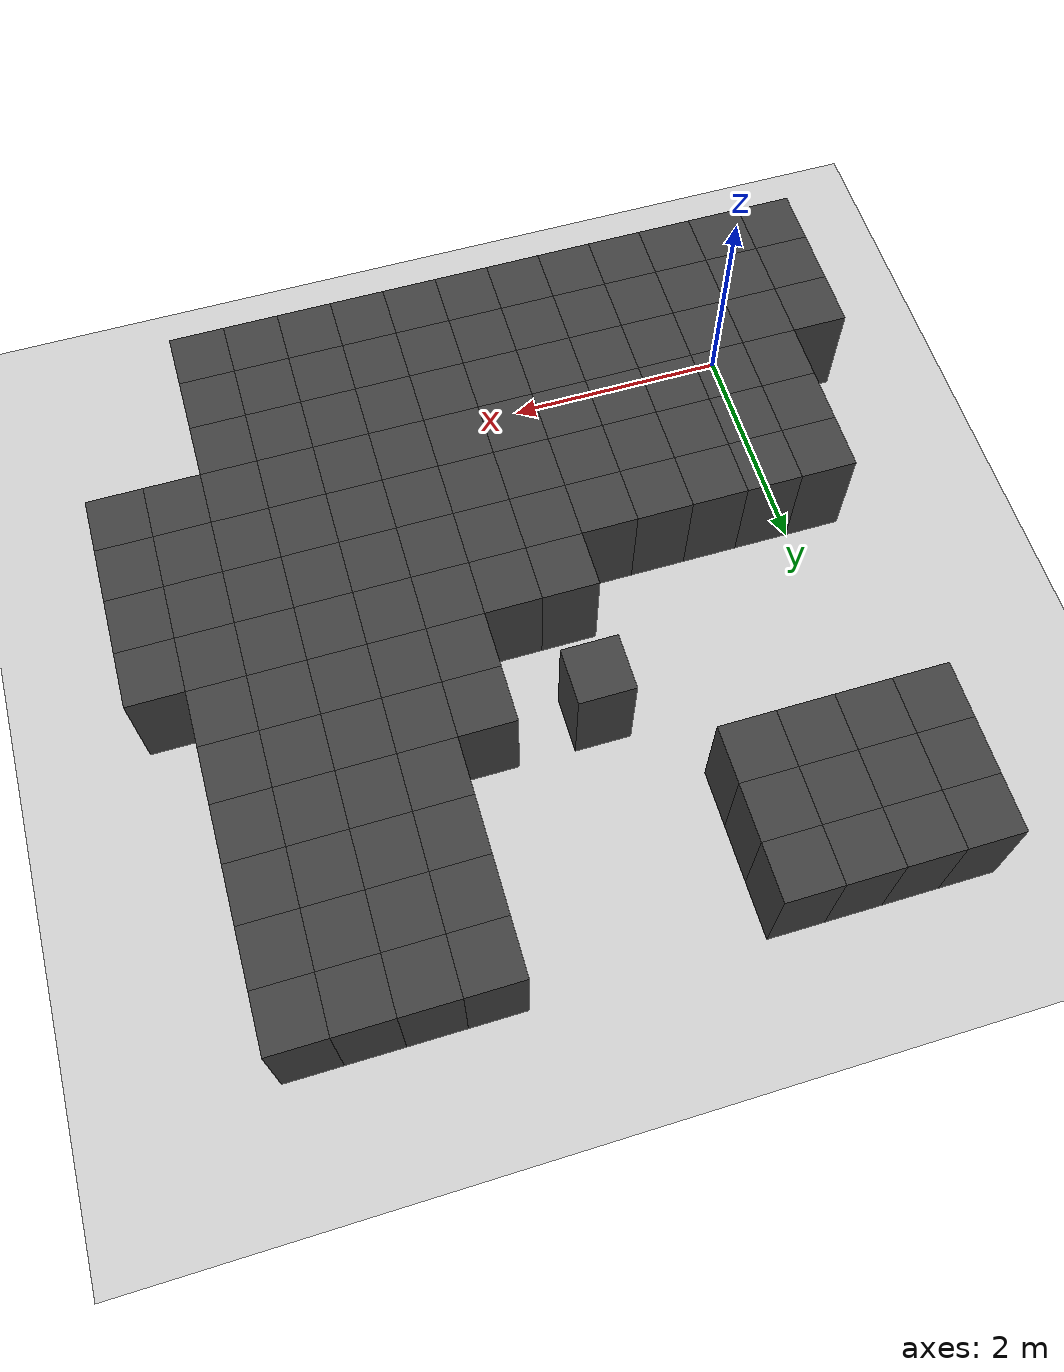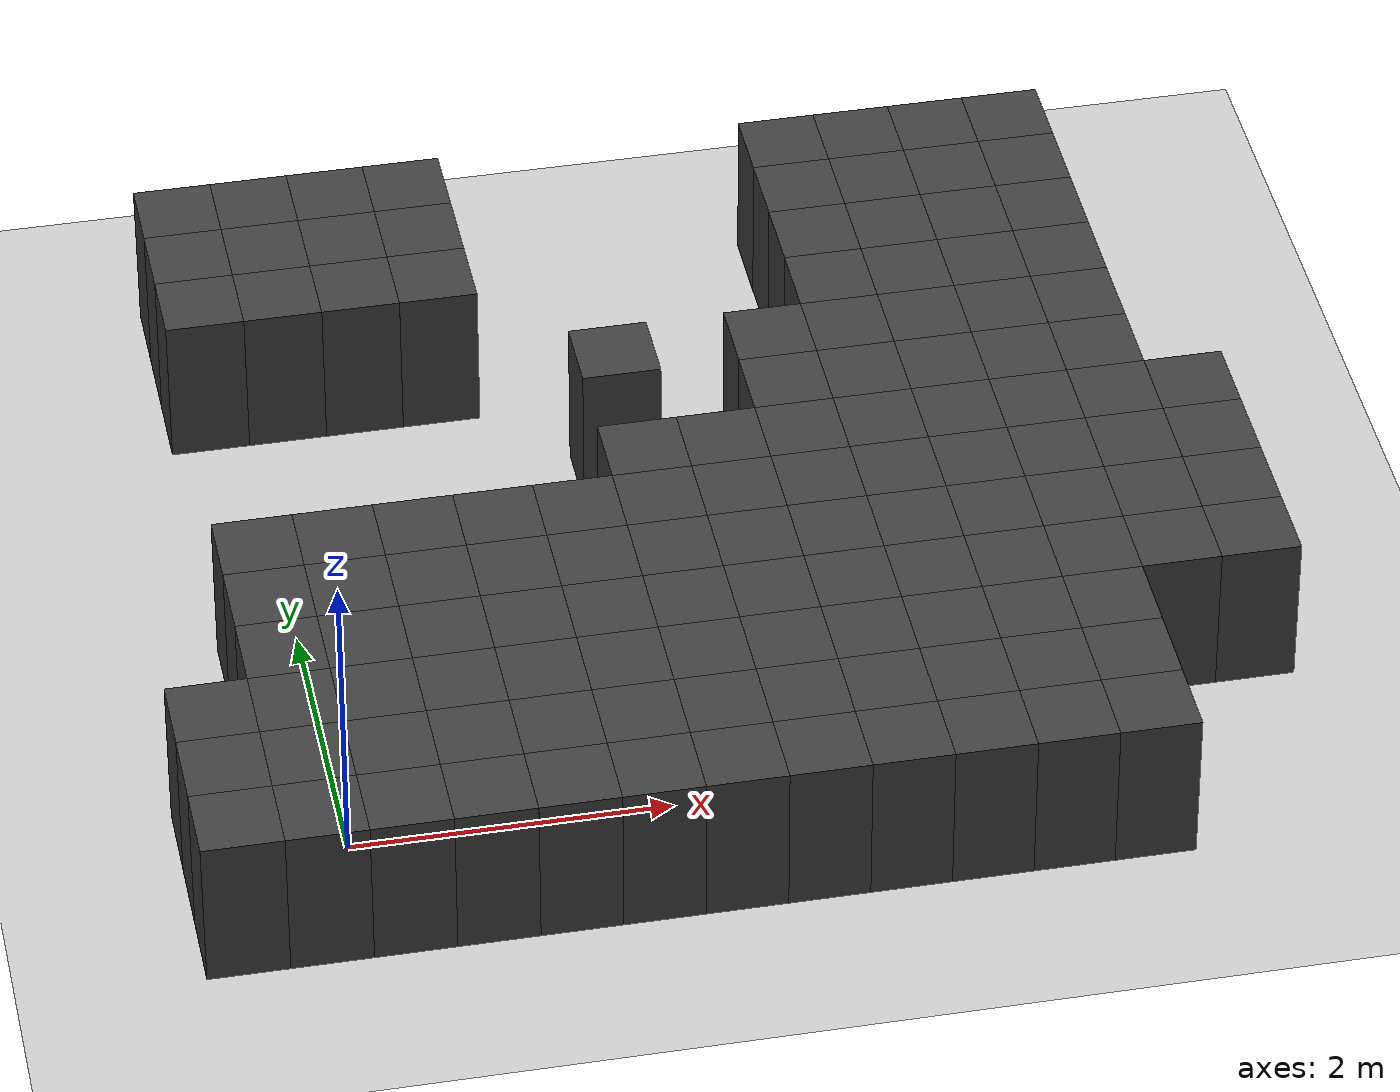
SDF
<sdf version="1.7">
 <world name="map_14706">
  <model name="ground_plane">
   <static>true</static>
   <link name="link">
    <collision name="collision">
     <geometry><plane><normal>0 0 1</normal><size>200 200</size></plane></geometry>
    </collision>
    <visual name="visual">
     <geometry><plane><normal>0 0 1</normal><size>200 200</size></plane></geometry>
     <material><ambient>0.8 0.8 0.8 1</ambient><diffuse>0.8 0.8 0.8 1</diffuse></material>
    </visual>
   </link>
  </model>
  <model name="maze_environment">
   <static>true</static>
   <link name="wall_438">
    <pose>-0.250 5.250 0.500 0 0 0</pose>
    <collision name="col"><geometry><box><size>0.5 0.5 1.0</size></box></geometry></collision>
    <visual name="vis">
     <geometry><box><size>0.5 0.5 1.0</size></box></geometry>
     <material><ambient>0.15 0.15 0.15 1</ambient><diffuse>0.25 0.25 0.25 1</diffuse></material>
    </visual>
   </link>
   <link name="wall_439">
    <pose>0.250 5.250 0.500 0 0 0</pose>
    <collision name="col"><geometry><box><size>0.5 0.5 1.0</size></box></geometry></collision>
    <visual name="vis">
     <geometry><box><size>0.5 0.5 1.0</size></box></geometry>
     <material><ambient>0.15 0.15 0.15 1</ambient><diffuse>0.25 0.25 0.25 1</diffuse></material>
    </visual>
   </link>
   <link name="wall_440">
    <pose>0.750 5.250 0.500 0 0 0</pose>
    <collision name="col"><geometry><box><size>0.5 0.5 1.0</size></box></geometry></collision>
    <visual name="vis">
     <geometry><box><size>0.5 0.5 1.0</size></box></geometry>
     <material><ambient>0.15 0.15 0.15 1</ambient><diffuse>0.25 0.25 0.25 1</diffuse></material>
    </visual>
   </link>
   <link name="wall_441">
    <pose>1.250 5.250 0.500 0 0 0</pose>
    <collision name="col"><geometry><box><size>0.5 0.5 1.0</size></box></geometry></collision>
    <visual name="vis">
     <geometry><box><size>0.5 0.5 1.0</size></box></geometry>
     <material><ambient>0.15 0.15 0.15 1</ambient><diffuse>0.25 0.25 0.25 1</diffuse></material>
    </visual>
   </link>
   <link name="wall_442">
    <pose>3.750 5.250 0.500 0 0 0</pose>
    <collision name="col"><geometry><box><size>0.5 0.5 1.0</size></box></geometry></collision>
    <visual name="vis">
     <geometry><box><size>0.5 0.5 1.0</size></box></geometry>
     <material><ambient>0.15 0.15 0.15 1</ambient><diffuse>0.25 0.25 0.25 1</diffuse></material>
    </visual>
   </link>
   <link name="wall_443">
    <pose>4.250 5.250 0.500 0 0 0</pose>
    <collision name="col"><geometry><box><size>0.5 0.5 1.0</size></box></geometry></collision>
    <visual name="vis">
     <geometry><box><size>0.5 0.5 1.0</size></box></geometry>
     <material><ambient>0.15 0.15 0.15 1</ambient><diffuse>0.25 0.25 0.25 1</diffuse></material>
    </visual>
   </link>
   <link name="wall_444">
    <pose>4.750 5.250 0.500 0 0 0</pose>
    <collision name="col"><geometry><box><size>0.5 0.5 1.0</size></box></geometry></collision>
    <visual name="vis">
     <geometry><box><size>0.5 0.5 1.0</size></box></geometry>
     <material><ambient>0.15 0.15 0.15 1</ambient><diffuse>0.25 0.25 0.25 1</diffuse></material>
    </visual>
   </link>
   <link name="wall_445">
    <pose>5.250 5.250 0.500 0 0 0</pose>
    <collision name="col"><geometry><box><size>0.5 0.5 1.0</size></box></geometry></collision>
    <visual name="vis">
     <geometry><box><size>0.5 0.5 1.0</size></box></geometry>
     <material><ambient>0.15 0.15 0.15 1</ambient><diffuse>0.25 0.25 0.25 1</diffuse></material>
    </visual>
   </link>
   <link name="wall_478">
    <pose>-0.250 4.750 0.500 0 0 0</pose>
    <collision name="col"><geometry><box><size>0.5 0.5 1.0</size></box></geometry></collision>
    <visual name="vis">
     <geometry><box><size>0.5 0.5 1.0</size></box></geometry>
     <material><ambient>0.15 0.15 0.15 1</ambient><diffuse>0.25 0.25 0.25 1</diffuse></material>
    </visual>
   </link>
   <link name="wall_479">
    <pose>0.250 4.750 0.500 0 0 0</pose>
    <collision name="col"><geometry><box><size>0.5 0.5 1.0</size></box></geometry></collision>
    <visual name="vis">
     <geometry><box><size>0.5 0.5 1.0</size></box></geometry>
     <material><ambient>0.15 0.15 0.15 1</ambient><diffuse>0.25 0.25 0.25 1</diffuse></material>
    </visual>
   </link>
   <link name="wall_480">
    <pose>0.750 4.750 0.500 0 0 0</pose>
    <collision name="col"><geometry><box><size>0.5 0.5 1.0</size></box></geometry></collision>
    <visual name="vis">
     <geometry><box><size>0.5 0.5 1.0</size></box></geometry>
     <material><ambient>0.15 0.15 0.15 1</ambient><diffuse>0.25 0.25 0.25 1</diffuse></material>
    </visual>
   </link>
   <link name="wall_481">
    <pose>1.250 4.750 0.500 0 0 0</pose>
    <collision name="col"><geometry><box><size>0.5 0.5 1.0</size></box></geometry></collision>
    <visual name="vis">
     <geometry><box><size>0.5 0.5 1.0</size></box></geometry>
     <material><ambient>0.15 0.15 0.15 1</ambient><diffuse>0.25 0.25 0.25 1</diffuse></material>
    </visual>
   </link>
   <link name="wall_482">
    <pose>3.750 4.750 0.500 0 0 0</pose>
    <collision name="col"><geometry><box><size>0.5 0.5 1.0</size></box></geometry></collision>
    <visual name="vis">
     <geometry><box><size>0.5 0.5 1.0</size></box></geometry>
     <material><ambient>0.15 0.15 0.15 1</ambient><diffuse>0.25 0.25 0.25 1</diffuse></material>
    </visual>
   </link>
   <link name="wall_483">
    <pose>4.250 4.750 0.500 0 0 0</pose>
    <collision name="col"><geometry><box><size>0.5 0.5 1.0</size></box></geometry></collision>
    <visual name="vis">
     <geometry><box><size>0.5 0.5 1.0</size></box></geometry>
     <material><ambient>0.15 0.15 0.15 1</ambient><diffuse>0.25 0.25 0.25 1</diffuse></material>
    </visual>
   </link>
   <link name="wall_484">
    <pose>4.750 4.750 0.500 0 0 0</pose>
    <collision name="col"><geometry><box><size>0.5 0.5 1.0</size></box></geometry></collision>
    <visual name="vis">
     <geometry><box><size>0.5 0.5 1.0</size></box></geometry>
     <material><ambient>0.15 0.15 0.15 1</ambient><diffuse>0.25 0.25 0.25 1</diffuse></material>
    </visual>
   </link>
   <link name="wall_485">
    <pose>5.250 4.750 0.500 0 0 0</pose>
    <collision name="col"><geometry><box><size>0.5 0.5 1.0</size></box></geometry></collision>
    <visual name="vis">
     <geometry><box><size>0.5 0.5 1.0</size></box></geometry>
     <material><ambient>0.15 0.15 0.15 1</ambient><diffuse>0.25 0.25 0.25 1</diffuse></material>
    </visual>
   </link>
   <link name="wall_517">
    <pose>-0.250 4.250 0.500 0 0 0</pose>
    <collision name="col"><geometry><box><size>0.5 0.5 1.0</size></box></geometry></collision>
    <visual name="vis">
     <geometry><box><size>0.5 0.5 1.0</size></box></geometry>
     <material><ambient>0.15 0.15 0.15 1</ambient><diffuse>0.25 0.25 0.25 1</diffuse></material>
    </visual>
   </link>
   <link name="wall_518">
    <pose>0.250 4.250 0.500 0 0 0</pose>
    <collision name="col"><geometry><box><size>0.5 0.5 1.0</size></box></geometry></collision>
    <visual name="vis">
     <geometry><box><size>0.5 0.5 1.0</size></box></geometry>
     <material><ambient>0.15 0.15 0.15 1</ambient><diffuse>0.25 0.25 0.25 1</diffuse></material>
    </visual>
   </link>
   <link name="wall_519">
    <pose>0.750 4.250 0.500 0 0 0</pose>
    <collision name="col"><geometry><box><size>0.5 0.5 1.0</size></box></geometry></collision>
    <visual name="vis">
     <geometry><box><size>0.5 0.5 1.0</size></box></geometry>
     <material><ambient>0.15 0.15 0.15 1</ambient><diffuse>0.25 0.25 0.25 1</diffuse></material>
    </visual>
   </link>
   <link name="wall_520">
    <pose>1.250 4.250 0.500 0 0 0</pose>
    <collision name="col"><geometry><box><size>0.5 0.5 1.0</size></box></geometry></collision>
    <visual name="vis">
     <geometry><box><size>0.5 0.5 1.0</size></box></geometry>
     <material><ambient>0.15 0.15 0.15 1</ambient><diffuse>0.25 0.25 0.25 1</diffuse></material>
    </visual>
   </link>
   <link name="wall_521">
    <pose>3.750 4.250 0.500 0 0 0</pose>
    <collision name="col"><geometry><box><size>0.5 0.5 1.0</size></box></geometry></collision>
    <visual name="vis">
     <geometry><box><size>0.5 0.5 1.0</size></box></geometry>
     <material><ambient>0.15 0.15 0.15 1</ambient><diffuse>0.25 0.25 0.25 1</diffuse></material>
    </visual>
   </link>
   <link name="wall_522">
    <pose>4.250 4.250 0.500 0 0 0</pose>
    <collision name="col"><geometry><box><size>0.5 0.5 1.0</size></box></geometry></collision>
    <visual name="vis">
     <geometry><box><size>0.5 0.5 1.0</size></box></geometry>
     <material><ambient>0.15 0.15 0.15 1</ambient><diffuse>0.25 0.25 0.25 1</diffuse></material>
    </visual>
   </link>
   <link name="wall_523">
    <pose>4.750 4.250 0.500 0 0 0</pose>
    <collision name="col"><geometry><box><size>0.5 0.5 1.0</size></box></geometry></collision>
    <visual name="vis">
     <geometry><box><size>0.5 0.5 1.0</size></box></geometry>
     <material><ambient>0.15 0.15 0.15 1</ambient><diffuse>0.25 0.25 0.25 1</diffuse></material>
    </visual>
   </link>
   <link name="wall_524">
    <pose>5.250 4.250 0.500 0 0 0</pose>
    <collision name="col"><geometry><box><size>0.5 0.5 1.0</size></box></geometry></collision>
    <visual name="vis">
     <geometry><box><size>0.5 0.5 1.0</size></box></geometry>
     <material><ambient>0.15 0.15 0.15 1</ambient><diffuse>0.25 0.25 0.25 1</diffuse></material>
    </visual>
   </link>
   <link name="wall_556">
    <pose>3.750 3.750 0.500 0 0 0</pose>
    <collision name="col"><geometry><box><size>0.5 0.5 1.0</size></box></geometry></collision>
    <visual name="vis">
     <geometry><box><size>0.5 0.5 1.0</size></box></geometry>
     <material><ambient>0.15 0.15 0.15 1</ambient><diffuse>0.25 0.25 0.25 1</diffuse></material>
    </visual>
   </link>
   <link name="wall_557">
    <pose>4.250 3.750 0.500 0 0 0</pose>
    <collision name="col"><geometry><box><size>0.5 0.5 1.0</size></box></geometry></collision>
    <visual name="vis">
     <geometry><box><size>0.5 0.5 1.0</size></box></geometry>
     <material><ambient>0.15 0.15 0.15 1</ambient><diffuse>0.25 0.25 0.25 1</diffuse></material>
    </visual>
   </link>
   <link name="wall_558">
    <pose>4.750 3.750 0.500 0 0 0</pose>
    <collision name="col"><geometry><box><size>0.5 0.5 1.0</size></box></geometry></collision>
    <visual name="vis">
     <geometry><box><size>0.5 0.5 1.0</size></box></geometry>
     <material><ambient>0.15 0.15 0.15 1</ambient><diffuse>0.25 0.25 0.25 1</diffuse></material>
    </visual>
   </link>
   <link name="wall_559">
    <pose>5.250 3.750 0.500 0 0 0</pose>
    <collision name="col"><geometry><box><size>0.5 0.5 1.0</size></box></geometry></collision>
    <visual name="vis">
     <geometry><box><size>0.5 0.5 1.0</size></box></geometry>
     <material><ambient>0.15 0.15 0.15 1</ambient><diffuse>0.25 0.25 0.25 1</diffuse></material>
    </visual>
   </link>
   <link name="wall_586">
    <pose>2.250 3.250 0.500 0 0 0</pose>
    <collision name="col"><geometry><box><size>0.5 0.5 1.0</size></box></geometry></collision>
    <visual name="vis">
     <geometry><box><size>0.5 0.5 1.0</size></box></geometry>
     <material><ambient>0.15 0.15 0.15 1</ambient><diffuse>0.25 0.25 0.25 1</diffuse></material>
    </visual>
   </link>
   <link name="wall_587">
    <pose>3.250 3.250 0.500 0 0 0</pose>
    <collision name="col"><geometry><box><size>0.5 0.5 1.0</size></box></geometry></collision>
    <visual name="vis">
     <geometry><box><size>0.5 0.5 1.0</size></box></geometry>
     <material><ambient>0.15 0.15 0.15 1</ambient><diffuse>0.25 0.25 0.25 1</diffuse></material>
    </visual>
   </link>
   <link name="wall_588">
    <pose>3.750 3.250 0.500 0 0 0</pose>
    <collision name="col"><geometry><box><size>0.5 0.5 1.0</size></box></geometry></collision>
    <visual name="vis">
     <geometry><box><size>0.5 0.5 1.0</size></box></geometry>
     <material><ambient>0.15 0.15 0.15 1</ambient><diffuse>0.25 0.25 0.25 1</diffuse></material>
    </visual>
   </link>
   <link name="wall_589">
    <pose>4.250 3.250 0.500 0 0 0</pose>
    <collision name="col"><geometry><box><size>0.5 0.5 1.0</size></box></geometry></collision>
    <visual name="vis">
     <geometry><box><size>0.5 0.5 1.0</size></box></geometry>
     <material><ambient>0.15 0.15 0.15 1</ambient><diffuse>0.25 0.25 0.25 1</diffuse></material>
    </visual>
   </link>
   <link name="wall_590">
    <pose>4.750 3.250 0.500 0 0 0</pose>
    <collision name="col"><geometry><box><size>0.5 0.5 1.0</size></box></geometry></collision>
    <visual name="vis">
     <geometry><box><size>0.5 0.5 1.0</size></box></geometry>
     <material><ambient>0.15 0.15 0.15 1</ambient><diffuse>0.25 0.25 0.25 1</diffuse></material>
    </visual>
   </link>
   <link name="wall_591">
    <pose>5.250 3.250 0.500 0 0 0</pose>
    <collision name="col"><geometry><box><size>0.5 0.5 1.0</size></box></geometry></collision>
    <visual name="vis">
     <geometry><box><size>0.5 0.5 1.0</size></box></geometry>
     <material><ambient>0.15 0.15 0.15 1</ambient><diffuse>0.25 0.25 0.25 1</diffuse></material>
    </visual>
   </link>
   <link name="wall_618">
    <pose>3.250 2.750 0.500 0 0 0</pose>
    <collision name="col"><geometry><box><size>0.5 0.5 1.0</size></box></geometry></collision>
    <visual name="vis">
     <geometry><box><size>0.5 0.5 1.0</size></box></geometry>
     <material><ambient>0.15 0.15 0.15 1</ambient><diffuse>0.25 0.25 0.25 1</diffuse></material>
    </visual>
   </link>
   <link name="wall_619">
    <pose>3.750 2.750 0.500 0 0 0</pose>
    <collision name="col"><geometry><box><size>0.5 0.5 1.0</size></box></geometry></collision>
    <visual name="vis">
     <geometry><box><size>0.5 0.5 1.0</size></box></geometry>
     <material><ambient>0.15 0.15 0.15 1</ambient><diffuse>0.25 0.25 0.25 1</diffuse></material>
    </visual>
   </link>
   <link name="wall_620">
    <pose>4.250 2.750 0.500 0 0 0</pose>
    <collision name="col"><geometry><box><size>0.5 0.5 1.0</size></box></geometry></collision>
    <visual name="vis">
     <geometry><box><size>0.5 0.5 1.0</size></box></geometry>
     <material><ambient>0.15 0.15 0.15 1</ambient><diffuse>0.25 0.25 0.25 1</diffuse></material>
    </visual>
   </link>
   <link name="wall_621">
    <pose>4.750 2.750 0.500 0 0 0</pose>
    <collision name="col"><geometry><box><size>0.5 0.5 1.0</size></box></geometry></collision>
    <visual name="vis">
     <geometry><box><size>0.5 0.5 1.0</size></box></geometry>
     <material><ambient>0.15 0.15 0.15 1</ambient><diffuse>0.25 0.25 0.25 1</diffuse></material>
    </visual>
   </link>
   <link name="wall_622">
    <pose>5.250 2.750 0.500 0 0 0</pose>
    <collision name="col"><geometry><box><size>0.5 0.5 1.0</size></box></geometry></collision>
    <visual name="vis">
     <geometry><box><size>0.5 0.5 1.0</size></box></geometry>
     <material><ambient>0.15 0.15 0.15 1</ambient><diffuse>0.25 0.25 0.25 1</diffuse></material>
    </visual>
   </link>
   <link name="wall_647">
    <pose>2.250 2.250 0.500 0 0 0</pose>
    <collision name="col"><geometry><box><size>0.5 0.5 1.0</size></box></geometry></collision>
    <visual name="vis">
     <geometry><box><size>0.5 0.5 1.0</size></box></geometry>
     <material><ambient>0.15 0.15 0.15 1</ambient><diffuse>0.25 0.25 0.25 1</diffuse></material>
    </visual>
   </link>
   <link name="wall_648">
    <pose>2.750 2.250 0.500 0 0 0</pose>
    <collision name="col"><geometry><box><size>0.5 0.5 1.0</size></box></geometry></collision>
    <visual name="vis">
     <geometry><box><size>0.5 0.5 1.0</size></box></geometry>
     <material><ambient>0.15 0.15 0.15 1</ambient><diffuse>0.25 0.25 0.25 1</diffuse></material>
    </visual>
   </link>
   <link name="wall_649">
    <pose>3.250 2.250 0.500 0 0 0</pose>
    <collision name="col"><geometry><box><size>0.5 0.5 1.0</size></box></geometry></collision>
    <visual name="vis">
     <geometry><box><size>0.5 0.5 1.0</size></box></geometry>
     <material><ambient>0.15 0.15 0.15 1</ambient><diffuse>0.25 0.25 0.25 1</diffuse></material>
    </visual>
   </link>
   <link name="wall_650">
    <pose>3.750 2.250 0.500 0 0 0</pose>
    <collision name="col"><geometry><box><size>0.5 0.5 1.0</size></box></geometry></collision>
    <visual name="vis">
     <geometry><box><size>0.5 0.5 1.0</size></box></geometry>
     <material><ambient>0.15 0.15 0.15 1</ambient><diffuse>0.25 0.25 0.25 1</diffuse></material>
    </visual>
   </link>
   <link name="wall_651">
    <pose>4.250 2.250 0.500 0 0 0</pose>
    <collision name="col"><geometry><box><size>0.5 0.5 1.0</size></box></geometry></collision>
    <visual name="vis">
     <geometry><box><size>0.5 0.5 1.0</size></box></geometry>
     <material><ambient>0.15 0.15 0.15 1</ambient><diffuse>0.25 0.25 0.25 1</diffuse></material>
    </visual>
   </link>
   <link name="wall_652">
    <pose>4.750 2.250 0.500 0 0 0</pose>
    <collision name="col"><geometry><box><size>0.5 0.5 1.0</size></box></geometry></collision>
    <visual name="vis">
     <geometry><box><size>0.5 0.5 1.0</size></box></geometry>
     <material><ambient>0.15 0.15 0.15 1</ambient><diffuse>0.25 0.25 0.25 1</diffuse></material>
    </visual>
   </link>
   <link name="wall_653">
    <pose>5.250 2.250 0.500 0 0 0</pose>
    <collision name="col"><geometry><box><size>0.5 0.5 1.0</size></box></geometry></collision>
    <visual name="vis">
     <geometry><box><size>0.5 0.5 1.0</size></box></geometry>
     <material><ambient>0.15 0.15 0.15 1</ambient><diffuse>0.25 0.25 0.25 1</diffuse></material>
    </visual>
   </link>
   <link name="wall_654">
    <pose>5.750 2.250 0.500 0 0 0</pose>
    <collision name="col"><geometry><box><size>0.5 0.5 1.0</size></box></geometry></collision>
    <visual name="vis">
     <geometry><box><size>0.5 0.5 1.0</size></box></geometry>
     <material><ambient>0.15 0.15 0.15 1</ambient><diffuse>0.25 0.25 0.25 1</diffuse></material>
    </visual>
   </link>
   <link name="wall_678">
    <pose>-0.250 1.750 0.500 0 0 0</pose>
    <collision name="col"><geometry><box><size>0.5 0.5 1.0</size></box></geometry></collision>
    <visual name="vis">
     <geometry><box><size>0.5 0.5 1.0</size></box></geometry>
     <material><ambient>0.15 0.15 0.15 1</ambient><diffuse>0.25 0.25 0.25 1</diffuse></material>
    </visual>
   </link>
   <link name="wall_679">
    <pose>0.250 1.750 0.500 0 0 0</pose>
    <collision name="col"><geometry><box><size>0.5 0.5 1.0</size></box></geometry></collision>
    <visual name="vis">
     <geometry><box><size>0.5 0.5 1.0</size></box></geometry>
     <material><ambient>0.15 0.15 0.15 1</ambient><diffuse>0.25 0.25 0.25 1</diffuse></material>
    </visual>
   </link>
   <link name="wall_680">
    <pose>0.750 1.750 0.500 0 0 0</pose>
    <collision name="col"><geometry><box><size>0.5 0.5 1.0</size></box></geometry></collision>
    <visual name="vis">
     <geometry><box><size>0.5 0.5 1.0</size></box></geometry>
     <material><ambient>0.15 0.15 0.15 1</ambient><diffuse>0.25 0.25 0.25 1</diffuse></material>
    </visual>
   </link>
   <link name="wall_681">
    <pose>1.250 1.750 0.500 0 0 0</pose>
    <collision name="col"><geometry><box><size>0.5 0.5 1.0</size></box></geometry></collision>
    <visual name="vis">
     <geometry><box><size>0.5 0.5 1.0</size></box></geometry>
     <material><ambient>0.15 0.15 0.15 1</ambient><diffuse>0.25 0.25 0.25 1</diffuse></material>
    </visual>
   </link>
   <link name="wall_682">
    <pose>1.750 1.750 0.500 0 0 0</pose>
    <collision name="col"><geometry><box><size>0.5 0.5 1.0</size></box></geometry></collision>
    <visual name="vis">
     <geometry><box><size>0.5 0.5 1.0</size></box></geometry>
     <material><ambient>0.15 0.15 0.15 1</ambient><diffuse>0.25 0.25 0.25 1</diffuse></material>
    </visual>
   </link>
   <link name="wall_683">
    <pose>2.250 1.750 0.500 0 0 0</pose>
    <collision name="col"><geometry><box><size>0.5 0.5 1.0</size></box></geometry></collision>
    <visual name="vis">
     <geometry><box><size>0.5 0.5 1.0</size></box></geometry>
     <material><ambient>0.15 0.15 0.15 1</ambient><diffuse>0.25 0.25 0.25 1</diffuse></material>
    </visual>
   </link>
   <link name="wall_684">
    <pose>2.750 1.750 0.500 0 0 0</pose>
    <collision name="col"><geometry><box><size>0.5 0.5 1.0</size></box></geometry></collision>
    <visual name="vis">
     <geometry><box><size>0.5 0.5 1.0</size></box></geometry>
     <material><ambient>0.15 0.15 0.15 1</ambient><diffuse>0.25 0.25 0.25 1</diffuse></material>
    </visual>
   </link>
   <link name="wall_685">
    <pose>3.250 1.750 0.500 0 0 0</pose>
    <collision name="col"><geometry><box><size>0.5 0.5 1.0</size></box></geometry></collision>
    <visual name="vis">
     <geometry><box><size>0.5 0.5 1.0</size></box></geometry>
     <material><ambient>0.15 0.15 0.15 1</ambient><diffuse>0.25 0.25 0.25 1</diffuse></material>
    </visual>
   </link>
   <link name="wall_686">
    <pose>3.750 1.750 0.500 0 0 0</pose>
    <collision name="col"><geometry><box><size>0.5 0.5 1.0</size></box></geometry></collision>
    <visual name="vis">
     <geometry><box><size>0.5 0.5 1.0</size></box></geometry>
     <material><ambient>0.15 0.15 0.15 1</ambient><diffuse>0.25 0.25 0.25 1</diffuse></material>
    </visual>
   </link>
   <link name="wall_687">
    <pose>4.250 1.750 0.500 0 0 0</pose>
    <collision name="col"><geometry><box><size>0.5 0.5 1.0</size></box></geometry></collision>
    <visual name="vis">
     <geometry><box><size>0.5 0.5 1.0</size></box></geometry>
     <material><ambient>0.15 0.15 0.15 1</ambient><diffuse>0.25 0.25 0.25 1</diffuse></material>
    </visual>
   </link>
   <link name="wall_688">
    <pose>4.750 1.750 0.500 0 0 0</pose>
    <collision name="col"><geometry><box><size>0.5 0.5 1.0</size></box></geometry></collision>
    <visual name="vis">
     <geometry><box><size>0.5 0.5 1.0</size></box></geometry>
     <material><ambient>0.15 0.15 0.15 1</ambient><diffuse>0.25 0.25 0.25 1</diffuse></material>
    </visual>
   </link>
   <link name="wall_689">
    <pose>5.250 1.750 0.500 0 0 0</pose>
    <collision name="col"><geometry><box><size>0.5 0.5 1.0</size></box></geometry></collision>
    <visual name="vis">
     <geometry><box><size>0.5 0.5 1.0</size></box></geometry>
     <material><ambient>0.15 0.15 0.15 1</ambient><diffuse>0.25 0.25 0.25 1</diffuse></material>
    </visual>
   </link>
   <link name="wall_690">
    <pose>5.750 1.750 0.500 0 0 0</pose>
    <collision name="col"><geometry><box><size>0.5 0.5 1.0</size></box></geometry></collision>
    <visual name="vis">
     <geometry><box><size>0.5 0.5 1.0</size></box></geometry>
     <material><ambient>0.15 0.15 0.15 1</ambient><diffuse>0.25 0.25 0.25 1</diffuse></material>
    </visual>
   </link>
   <link name="wall_714">
    <pose>-0.250 1.250 0.500 0 0 0</pose>
    <collision name="col"><geometry><box><size>0.5 0.5 1.0</size></box></geometry></collision>
    <visual name="vis">
     <geometry><box><size>0.5 0.5 1.0</size></box></geometry>
     <material><ambient>0.15 0.15 0.15 1</ambient><diffuse>0.25 0.25 0.25 1</diffuse></material>
    </visual>
   </link>
   <link name="wall_715">
    <pose>0.250 1.250 0.500 0 0 0</pose>
    <collision name="col"><geometry><box><size>0.5 0.5 1.0</size></box></geometry></collision>
    <visual name="vis">
     <geometry><box><size>0.5 0.5 1.0</size></box></geometry>
     <material><ambient>0.15 0.15 0.15 1</ambient><diffuse>0.25 0.25 0.25 1</diffuse></material>
    </visual>
   </link>
   <link name="wall_716">
    <pose>0.750 1.250 0.500 0 0 0</pose>
    <collision name="col"><geometry><box><size>0.5 0.5 1.0</size></box></geometry></collision>
    <visual name="vis">
     <geometry><box><size>0.5 0.5 1.0</size></box></geometry>
     <material><ambient>0.15 0.15 0.15 1</ambient><diffuse>0.25 0.25 0.25 1</diffuse></material>
    </visual>
   </link>
   <link name="wall_717">
    <pose>1.250 1.250 0.500 0 0 0</pose>
    <collision name="col"><geometry><box><size>0.5 0.5 1.0</size></box></geometry></collision>
    <visual name="vis">
     <geometry><box><size>0.5 0.5 1.0</size></box></geometry>
     <material><ambient>0.15 0.15 0.15 1</ambient><diffuse>0.25 0.25 0.25 1</diffuse></material>
    </visual>
   </link>
   <link name="wall_718">
    <pose>1.750 1.250 0.500 0 0 0</pose>
    <collision name="col"><geometry><box><size>0.5 0.5 1.0</size></box></geometry></collision>
    <visual name="vis">
     <geometry><box><size>0.5 0.5 1.0</size></box></geometry>
     <material><ambient>0.15 0.15 0.15 1</ambient><diffuse>0.25 0.25 0.25 1</diffuse></material>
    </visual>
   </link>
   <link name="wall_719">
    <pose>2.250 1.250 0.500 0 0 0</pose>
    <collision name="col"><geometry><box><size>0.5 0.5 1.0</size></box></geometry></collision>
    <visual name="vis">
     <geometry><box><size>0.5 0.5 1.0</size></box></geometry>
     <material><ambient>0.15 0.15 0.15 1</ambient><diffuse>0.25 0.25 0.25 1</diffuse></material>
    </visual>
   </link>
   <link name="wall_720">
    <pose>2.750 1.250 0.500 0 0 0</pose>
    <collision name="col"><geometry><box><size>0.5 0.5 1.0</size></box></geometry></collision>
    <visual name="vis">
     <geometry><box><size>0.5 0.5 1.0</size></box></geometry>
     <material><ambient>0.15 0.15 0.15 1</ambient><diffuse>0.25 0.25 0.25 1</diffuse></material>
    </visual>
   </link>
   <link name="wall_721">
    <pose>3.250 1.250 0.500 0 0 0</pose>
    <collision name="col"><geometry><box><size>0.5 0.5 1.0</size></box></geometry></collision>
    <visual name="vis">
     <geometry><box><size>0.5 0.5 1.0</size></box></geometry>
     <material><ambient>0.15 0.15 0.15 1</ambient><diffuse>0.25 0.25 0.25 1</diffuse></material>
    </visual>
   </link>
   <link name="wall_722">
    <pose>3.750 1.250 0.500 0 0 0</pose>
    <collision name="col"><geometry><box><size>0.5 0.5 1.0</size></box></geometry></collision>
    <visual name="vis">
     <geometry><box><size>0.5 0.5 1.0</size></box></geometry>
     <material><ambient>0.15 0.15 0.15 1</ambient><diffuse>0.25 0.25 0.25 1</diffuse></material>
    </visual>
   </link>
   <link name="wall_723">
    <pose>4.250 1.250 0.500 0 0 0</pose>
    <collision name="col"><geometry><box><size>0.5 0.5 1.0</size></box></geometry></collision>
    <visual name="vis">
     <geometry><box><size>0.5 0.5 1.0</size></box></geometry>
     <material><ambient>0.15 0.15 0.15 1</ambient><diffuse>0.25 0.25 0.25 1</diffuse></material>
    </visual>
   </link>
   <link name="wall_724">
    <pose>4.750 1.250 0.500 0 0 0</pose>
    <collision name="col"><geometry><box><size>0.5 0.5 1.0</size></box></geometry></collision>
    <visual name="vis">
     <geometry><box><size>0.5 0.5 1.0</size></box></geometry>
     <material><ambient>0.15 0.15 0.15 1</ambient><diffuse>0.25 0.25 0.25 1</diffuse></material>
    </visual>
   </link>
   <link name="wall_725">
    <pose>5.250 1.250 0.500 0 0 0</pose>
    <collision name="col"><geometry><box><size>0.5 0.5 1.0</size></box></geometry></collision>
    <visual name="vis">
     <geometry><box><size>0.5 0.5 1.0</size></box></geometry>
     <material><ambient>0.15 0.15 0.15 1</ambient><diffuse>0.25 0.25 0.25 1</diffuse></material>
    </visual>
   </link>
   <link name="wall_726">
    <pose>5.750 1.250 0.500 0 0 0</pose>
    <collision name="col"><geometry><box><size>0.5 0.5 1.0</size></box></geometry></collision>
    <visual name="vis">
     <geometry><box><size>0.5 0.5 1.0</size></box></geometry>
     <material><ambient>0.15 0.15 0.15 1</ambient><diffuse>0.25 0.25 0.25 1</diffuse></material>
    </visual>
   </link>
   <link name="wall_755">
    <pose>-0.250 0.750 0.500 0 0 0</pose>
    <collision name="col"><geometry><box><size>0.5 0.5 1.0</size></box></geometry></collision>
    <visual name="vis">
     <geometry><box><size>0.5 0.5 1.0</size></box></geometry>
     <material><ambient>0.15 0.15 0.15 1</ambient><diffuse>0.25 0.25 0.25 1</diffuse></material>
    </visual>
   </link>
   <link name="wall_756">
    <pose>0.250 0.750 0.500 0 0 0</pose>
    <collision name="col"><geometry><box><size>0.5 0.5 1.0</size></box></geometry></collision>
    <visual name="vis">
     <geometry><box><size>0.5 0.5 1.0</size></box></geometry>
     <material><ambient>0.15 0.15 0.15 1</ambient><diffuse>0.25 0.25 0.25 1</diffuse></material>
    </visual>
   </link>
   <link name="wall_757">
    <pose>0.750 0.750 0.500 0 0 0</pose>
    <collision name="col"><geometry><box><size>0.5 0.5 1.0</size></box></geometry></collision>
    <visual name="vis">
     <geometry><box><size>0.5 0.5 1.0</size></box></geometry>
     <material><ambient>0.15 0.15 0.15 1</ambient><diffuse>0.25 0.25 0.25 1</diffuse></material>
    </visual>
   </link>
   <link name="wall_758">
    <pose>1.250 0.750 0.500 0 0 0</pose>
    <collision name="col"><geometry><box><size>0.5 0.5 1.0</size></box></geometry></collision>
    <visual name="vis">
     <geometry><box><size>0.5 0.5 1.0</size></box></geometry>
     <material><ambient>0.15 0.15 0.15 1</ambient><diffuse>0.25 0.25 0.25 1</diffuse></material>
    </visual>
   </link>
   <link name="wall_759">
    <pose>1.750 0.750 0.500 0 0 0</pose>
    <collision name="col"><geometry><box><size>0.5 0.5 1.0</size></box></geometry></collision>
    <visual name="vis">
     <geometry><box><size>0.5 0.5 1.0</size></box></geometry>
     <material><ambient>0.15 0.15 0.15 1</ambient><diffuse>0.25 0.25 0.25 1</diffuse></material>
    </visual>
   </link>
   <link name="wall_760">
    <pose>2.250 0.750 0.500 0 0 0</pose>
    <collision name="col"><geometry><box><size>0.5 0.5 1.0</size></box></geometry></collision>
    <visual name="vis">
     <geometry><box><size>0.5 0.5 1.0</size></box></geometry>
     <material><ambient>0.15 0.15 0.15 1</ambient><diffuse>0.25 0.25 0.25 1</diffuse></material>
    </visual>
   </link>
   <link name="wall_761">
    <pose>2.750 0.750 0.500 0 0 0</pose>
    <collision name="col"><geometry><box><size>0.5 0.5 1.0</size></box></geometry></collision>
    <visual name="vis">
     <geometry><box><size>0.5 0.5 1.0</size></box></geometry>
     <material><ambient>0.15 0.15 0.15 1</ambient><diffuse>0.25 0.25 0.25 1</diffuse></material>
    </visual>
   </link>
   <link name="wall_762">
    <pose>3.250 0.750 0.500 0 0 0</pose>
    <collision name="col"><geometry><box><size>0.5 0.5 1.0</size></box></geometry></collision>
    <visual name="vis">
     <geometry><box><size>0.5 0.5 1.0</size></box></geometry>
     <material><ambient>0.15 0.15 0.15 1</ambient><diffuse>0.25 0.25 0.25 1</diffuse></material>
    </visual>
   </link>
   <link name="wall_763">
    <pose>3.750 0.750 0.500 0 0 0</pose>
    <collision name="col"><geometry><box><size>0.5 0.5 1.0</size></box></geometry></collision>
    <visual name="vis">
     <geometry><box><size>0.5 0.5 1.0</size></box></geometry>
     <material><ambient>0.15 0.15 0.15 1</ambient><diffuse>0.25 0.25 0.25 1</diffuse></material>
    </visual>
   </link>
   <link name="wall_764">
    <pose>4.250 0.750 0.500 0 0 0</pose>
    <collision name="col"><geometry><box><size>0.5 0.5 1.0</size></box></geometry></collision>
    <visual name="vis">
     <geometry><box><size>0.5 0.5 1.0</size></box></geometry>
     <material><ambient>0.15 0.15 0.15 1</ambient><diffuse>0.25 0.25 0.25 1</diffuse></material>
    </visual>
   </link>
   <link name="wall_765">
    <pose>4.750 0.750 0.500 0 0 0</pose>
    <collision name="col"><geometry><box><size>0.5 0.5 1.0</size></box></geometry></collision>
    <visual name="vis">
     <geometry><box><size>0.5 0.5 1.0</size></box></geometry>
     <material><ambient>0.15 0.15 0.15 1</ambient><diffuse>0.25 0.25 0.25 1</diffuse></material>
    </visual>
   </link>
   <link name="wall_766">
    <pose>5.250 0.750 0.500 0 0 0</pose>
    <collision name="col"><geometry><box><size>0.5 0.5 1.0</size></box></geometry></collision>
    <visual name="vis">
     <geometry><box><size>0.5 0.5 1.0</size></box></geometry>
     <material><ambient>0.15 0.15 0.15 1</ambient><diffuse>0.25 0.25 0.25 1</diffuse></material>
    </visual>
   </link>
   <link name="wall_767">
    <pose>5.750 0.750 0.500 0 0 0</pose>
    <collision name="col"><geometry><box><size>0.5 0.5 1.0</size></box></geometry></collision>
    <visual name="vis">
     <geometry><box><size>0.5 0.5 1.0</size></box></geometry>
     <material><ambient>0.15 0.15 0.15 1</ambient><diffuse>0.25 0.25 0.25 1</diffuse></material>
    </visual>
   </link>
   <link name="wall_795">
    <pose>-0.750 0.250 0.500 0 0 0</pose>
    <collision name="col"><geometry><box><size>0.5 0.5 1.0</size></box></geometry></collision>
    <visual name="vis">
     <geometry><box><size>0.5 0.5 1.0</size></box></geometry>
     <material><ambient>0.15 0.15 0.15 1</ambient><diffuse>0.25 0.25 0.25 1</diffuse></material>
    </visual>
   </link>
   <link name="wall_796">
    <pose>-0.250 0.250 0.500 0 0 0</pose>
    <collision name="col"><geometry><box><size>0.5 0.5 1.0</size></box></geometry></collision>
    <visual name="vis">
     <geometry><box><size>0.5 0.5 1.0</size></box></geometry>
     <material><ambient>0.15 0.15 0.15 1</ambient><diffuse>0.25 0.25 0.25 1</diffuse></material>
    </visual>
   </link>
   <link name="wall_797">
    <pose>0.250 0.250 0.500 0 0 0</pose>
    <collision name="col"><geometry><box><size>0.5 0.5 1.0</size></box></geometry></collision>
    <visual name="vis">
     <geometry><box><size>0.5 0.5 1.0</size></box></geometry>
     <material><ambient>0.15 0.15 0.15 1</ambient><diffuse>0.25 0.25 0.25 1</diffuse></material>
    </visual>
   </link>
   <link name="wall_798">
    <pose>0.750 0.250 0.500 0 0 0</pose>
    <collision name="col"><geometry><box><size>0.5 0.5 1.0</size></box></geometry></collision>
    <visual name="vis">
     <geometry><box><size>0.5 0.5 1.0</size></box></geometry>
     <material><ambient>0.15 0.15 0.15 1</ambient><diffuse>0.25 0.25 0.25 1</diffuse></material>
    </visual>
   </link>
   <link name="wall_799">
    <pose>1.250 0.250 0.500 0 0 0</pose>
    <collision name="col"><geometry><box><size>0.5 0.5 1.0</size></box></geometry></collision>
    <visual name="vis">
     <geometry><box><size>0.5 0.5 1.0</size></box></geometry>
     <material><ambient>0.15 0.15 0.15 1</ambient><diffuse>0.25 0.25 0.25 1</diffuse></material>
    </visual>
   </link>
   <link name="wall_800">
    <pose>1.750 0.250 0.500 0 0 0</pose>
    <collision name="col"><geometry><box><size>0.5 0.5 1.0</size></box></geometry></collision>
    <visual name="vis">
     <geometry><box><size>0.5 0.5 1.0</size></box></geometry>
     <material><ambient>0.15 0.15 0.15 1</ambient><diffuse>0.25 0.25 0.25 1</diffuse></material>
    </visual>
   </link>
   <link name="wall_801">
    <pose>2.250 0.250 0.500 0 0 0</pose>
    <collision name="col"><geometry><box><size>0.5 0.5 1.0</size></box></geometry></collision>
    <visual name="vis">
     <geometry><box><size>0.5 0.5 1.0</size></box></geometry>
     <material><ambient>0.15 0.15 0.15 1</ambient><diffuse>0.25 0.25 0.25 1</diffuse></material>
    </visual>
   </link>
   <link name="wall_802">
    <pose>2.750 0.250 0.500 0 0 0</pose>
    <collision name="col"><geometry><box><size>0.5 0.5 1.0</size></box></geometry></collision>
    <visual name="vis">
     <geometry><box><size>0.5 0.5 1.0</size></box></geometry>
     <material><ambient>0.15 0.15 0.15 1</ambient><diffuse>0.25 0.25 0.25 1</diffuse></material>
    </visual>
   </link>
   <link name="wall_803">
    <pose>3.250 0.250 0.500 0 0 0</pose>
    <collision name="col"><geometry><box><size>0.5 0.5 1.0</size></box></geometry></collision>
    <visual name="vis">
     <geometry><box><size>0.5 0.5 1.0</size></box></geometry>
     <material><ambient>0.15 0.15 0.15 1</ambient><diffuse>0.25 0.25 0.25 1</diffuse></material>
    </visual>
   </link>
   <link name="wall_804">
    <pose>3.750 0.250 0.500 0 0 0</pose>
    <collision name="col"><geometry><box><size>0.5 0.5 1.0</size></box></geometry></collision>
    <visual name="vis">
     <geometry><box><size>0.5 0.5 1.0</size></box></geometry>
     <material><ambient>0.15 0.15 0.15 1</ambient><diffuse>0.25 0.25 0.25 1</diffuse></material>
    </visual>
   </link>
   <link name="wall_805">
    <pose>4.250 0.250 0.500 0 0 0</pose>
    <collision name="col"><geometry><box><size>0.5 0.5 1.0</size></box></geometry></collision>
    <visual name="vis">
     <geometry><box><size>0.5 0.5 1.0</size></box></geometry>
     <material><ambient>0.15 0.15 0.15 1</ambient><diffuse>0.25 0.25 0.25 1</diffuse></material>
    </visual>
   </link>
   <link name="wall_806">
    <pose>4.750 0.250 0.500 0 0 0</pose>
    <collision name="col"><geometry><box><size>0.5 0.5 1.0</size></box></geometry></collision>
    <visual name="vis">
     <geometry><box><size>0.5 0.5 1.0</size></box></geometry>
     <material><ambient>0.15 0.15 0.15 1</ambient><diffuse>0.25 0.25 0.25 1</diffuse></material>
    </visual>
   </link>
   <link name="wall_837">
    <pose>-0.750 -0.250 0.500 0 0 0</pose>
    <collision name="col"><geometry><box><size>0.5 0.5 1.0</size></box></geometry></collision>
    <visual name="vis">
     <geometry><box><size>0.5 0.5 1.0</size></box></geometry>
     <material><ambient>0.15 0.15 0.15 1</ambient><diffuse>0.25 0.25 0.25 1</diffuse></material>
    </visual>
   </link>
   <link name="wall_838">
    <pose>-0.250 -0.250 0.500 0 0 0</pose>
    <collision name="col"><geometry><box><size>0.5 0.5 1.0</size></box></geometry></collision>
    <visual name="vis">
     <geometry><box><size>0.5 0.5 1.0</size></box></geometry>
     <material><ambient>0.15 0.15 0.15 1</ambient><diffuse>0.25 0.25 0.25 1</diffuse></material>
    </visual>
   </link>
   <link name="wall_839">
    <pose>0.250 -0.250 0.500 0 0 0</pose>
    <collision name="col"><geometry><box><size>0.5 0.5 1.0</size></box></geometry></collision>
    <visual name="vis">
     <geometry><box><size>0.5 0.5 1.0</size></box></geometry>
     <material><ambient>0.15 0.15 0.15 1</ambient><diffuse>0.25 0.25 0.25 1</diffuse></material>
    </visual>
   </link>
   <link name="wall_840">
    <pose>0.750 -0.250 0.500 0 0 0</pose>
    <collision name="col"><geometry><box><size>0.5 0.5 1.0</size></box></geometry></collision>
    <visual name="vis">
     <geometry><box><size>0.5 0.5 1.0</size></box></geometry>
     <material><ambient>0.15 0.15 0.15 1</ambient><diffuse>0.25 0.25 0.25 1</diffuse></material>
    </visual>
   </link>
   <link name="wall_841">
    <pose>1.250 -0.250 0.500 0 0 0</pose>
    <collision name="col"><geometry><box><size>0.5 0.5 1.0</size></box></geometry></collision>
    <visual name="vis">
     <geometry><box><size>0.5 0.5 1.0</size></box></geometry>
     <material><ambient>0.15 0.15 0.15 1</ambient><diffuse>0.25 0.25 0.25 1</diffuse></material>
    </visual>
   </link>
   <link name="wall_842">
    <pose>1.750 -0.250 0.500 0 0 0</pose>
    <collision name="col"><geometry><box><size>0.5 0.5 1.0</size></box></geometry></collision>
    <visual name="vis">
     <geometry><box><size>0.5 0.5 1.0</size></box></geometry>
     <material><ambient>0.15 0.15 0.15 1</ambient><diffuse>0.25 0.25 0.25 1</diffuse></material>
    </visual>
   </link>
   <link name="wall_843">
    <pose>2.250 -0.250 0.500 0 0 0</pose>
    <collision name="col"><geometry><box><size>0.5 0.5 1.0</size></box></geometry></collision>
    <visual name="vis">
     <geometry><box><size>0.5 0.5 1.0</size></box></geometry>
     <material><ambient>0.15 0.15 0.15 1</ambient><diffuse>0.25 0.25 0.25 1</diffuse></material>
    </visual>
   </link>
   <link name="wall_844">
    <pose>2.750 -0.250 0.500 0 0 0</pose>
    <collision name="col"><geometry><box><size>0.5 0.5 1.0</size></box></geometry></collision>
    <visual name="vis">
     <geometry><box><size>0.5 0.5 1.0</size></box></geometry>
     <material><ambient>0.15 0.15 0.15 1</ambient><diffuse>0.25 0.25 0.25 1</diffuse></material>
    </visual>
   </link>
   <link name="wall_845">
    <pose>3.250 -0.250 0.500 0 0 0</pose>
    <collision name="col"><geometry><box><size>0.5 0.5 1.0</size></box></geometry></collision>
    <visual name="vis">
     <geometry><box><size>0.5 0.5 1.0</size></box></geometry>
     <material><ambient>0.15 0.15 0.15 1</ambient><diffuse>0.25 0.25 0.25 1</diffuse></material>
    </visual>
   </link>
   <link name="wall_846">
    <pose>3.750 -0.250 0.500 0 0 0</pose>
    <collision name="col"><geometry><box><size>0.5 0.5 1.0</size></box></geometry></collision>
    <visual name="vis">
     <geometry><box><size>0.5 0.5 1.0</size></box></geometry>
     <material><ambient>0.15 0.15 0.15 1</ambient><diffuse>0.25 0.25 0.25 1</diffuse></material>
    </visual>
   </link>
   <link name="wall_847">
    <pose>4.250 -0.250 0.500 0 0 0</pose>
    <collision name="col"><geometry><box><size>0.5 0.5 1.0</size></box></geometry></collision>
    <visual name="vis">
     <geometry><box><size>0.5 0.5 1.0</size></box></geometry>
     <material><ambient>0.15 0.15 0.15 1</ambient><diffuse>0.25 0.25 0.25 1</diffuse></material>
    </visual>
   </link>
   <link name="wall_848">
    <pose>4.750 -0.250 0.500 0 0 0</pose>
    <collision name="col"><geometry><box><size>0.5 0.5 1.0</size></box></geometry></collision>
    <visual name="vis">
     <geometry><box><size>0.5 0.5 1.0</size></box></geometry>
     <material><ambient>0.15 0.15 0.15 1</ambient><diffuse>0.25 0.25 0.25 1</diffuse></material>
    </visual>
   </link>
   <link name="wall_879">
    <pose>-0.750 -0.750 0.500 0 0 0</pose>
    <collision name="col"><geometry><box><size>0.5 0.5 1.0</size></box></geometry></collision>
    <visual name="vis">
     <geometry><box><size>0.5 0.5 1.0</size></box></geometry>
     <material><ambient>0.15 0.15 0.15 1</ambient><diffuse>0.25 0.25 0.25 1</diffuse></material>
    </visual>
   </link>
   <link name="wall_880">
    <pose>-0.250 -0.750 0.500 0 0 0</pose>
    <collision name="col"><geometry><box><size>0.5 0.5 1.0</size></box></geometry></collision>
    <visual name="vis">
     <geometry><box><size>0.5 0.5 1.0</size></box></geometry>
     <material><ambient>0.15 0.15 0.15 1</ambient><diffuse>0.25 0.25 0.25 1</diffuse></material>
    </visual>
   </link>
   <link name="wall_881">
    <pose>0.250 -0.750 0.500 0 0 0</pose>
    <collision name="col"><geometry><box><size>0.5 0.5 1.0</size></box></geometry></collision>
    <visual name="vis">
     <geometry><box><size>0.5 0.5 1.0</size></box></geometry>
     <material><ambient>0.15 0.15 0.15 1</ambient><diffuse>0.25 0.25 0.25 1</diffuse></material>
    </visual>
   </link>
   <link name="wall_882">
    <pose>0.750 -0.750 0.500 0 0 0</pose>
    <collision name="col"><geometry><box><size>0.5 0.5 1.0</size></box></geometry></collision>
    <visual name="vis">
     <geometry><box><size>0.5 0.5 1.0</size></box></geometry>
     <material><ambient>0.15 0.15 0.15 1</ambient><diffuse>0.25 0.25 0.25 1</diffuse></material>
    </visual>
   </link>
   <link name="wall_883">
    <pose>1.250 -0.750 0.500 0 0 0</pose>
    <collision name="col"><geometry><box><size>0.5 0.5 1.0</size></box></geometry></collision>
    <visual name="vis">
     <geometry><box><size>0.5 0.5 1.0</size></box></geometry>
     <material><ambient>0.15 0.15 0.15 1</ambient><diffuse>0.25 0.25 0.25 1</diffuse></material>
    </visual>
   </link>
   <link name="wall_884">
    <pose>1.750 -0.750 0.500 0 0 0</pose>
    <collision name="col"><geometry><box><size>0.5 0.5 1.0</size></box></geometry></collision>
    <visual name="vis">
     <geometry><box><size>0.5 0.5 1.0</size></box></geometry>
     <material><ambient>0.15 0.15 0.15 1</ambient><diffuse>0.25 0.25 0.25 1</diffuse></material>
    </visual>
   </link>
   <link name="wall_885">
    <pose>2.250 -0.750 0.500 0 0 0</pose>
    <collision name="col"><geometry><box><size>0.5 0.5 1.0</size></box></geometry></collision>
    <visual name="vis">
     <geometry><box><size>0.5 0.5 1.0</size></box></geometry>
     <material><ambient>0.15 0.15 0.15 1</ambient><diffuse>0.25 0.25 0.25 1</diffuse></material>
    </visual>
   </link>
   <link name="wall_886">
    <pose>2.750 -0.750 0.500 0 0 0</pose>
    <collision name="col"><geometry><box><size>0.5 0.5 1.0</size></box></geometry></collision>
    <visual name="vis">
     <geometry><box><size>0.5 0.5 1.0</size></box></geometry>
     <material><ambient>0.15 0.15 0.15 1</ambient><diffuse>0.25 0.25 0.25 1</diffuse></material>
    </visual>
   </link>
   <link name="wall_887">
    <pose>3.250 -0.750 0.500 0 0 0</pose>
    <collision name="col"><geometry><box><size>0.5 0.5 1.0</size></box></geometry></collision>
    <visual name="vis">
     <geometry><box><size>0.5 0.5 1.0</size></box></geometry>
     <material><ambient>0.15 0.15 0.15 1</ambient><diffuse>0.25 0.25 0.25 1</diffuse></material>
    </visual>
   </link>
   <link name="wall_888">
    <pose>3.750 -0.750 0.500 0 0 0</pose>
    <collision name="col"><geometry><box><size>0.5 0.5 1.0</size></box></geometry></collision>
    <visual name="vis">
     <geometry><box><size>0.5 0.5 1.0</size></box></geometry>
     <material><ambient>0.15 0.15 0.15 1</ambient><diffuse>0.25 0.25 0.25 1</diffuse></material>
    </visual>
   </link>
   <link name="wall_889">
    <pose>4.250 -0.750 0.500 0 0 0</pose>
    <collision name="col"><geometry><box><size>0.5 0.5 1.0</size></box></geometry></collision>
    <visual name="vis">
     <geometry><box><size>0.5 0.5 1.0</size></box></geometry>
     <material><ambient>0.15 0.15 0.15 1</ambient><diffuse>0.25 0.25 0.25 1</diffuse></material>
    </visual>
   </link>
   <link name="wall_890">
    <pose>4.750 -0.750 0.500 0 0 0</pose>
    <collision name="col"><geometry><box><size>0.5 0.5 1.0</size></box></geometry></collision>
    <visual name="vis">
     <geometry><box><size>0.5 0.5 1.0</size></box></geometry>
     <material><ambient>0.15 0.15 0.15 1</ambient><diffuse>0.25 0.25 0.25 1</diffuse></material>
    </visual>
   </link>
  </model>
 </world>
</sdf>
